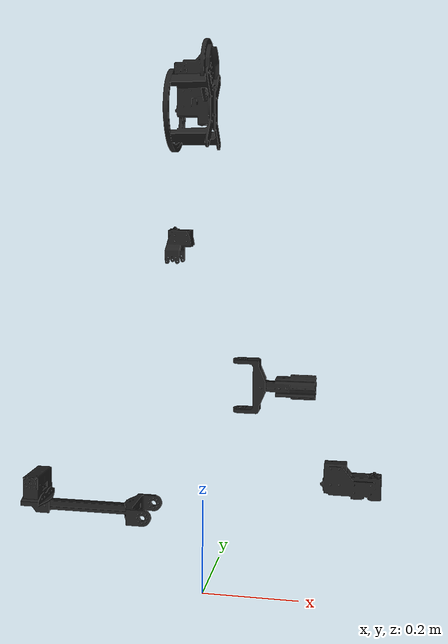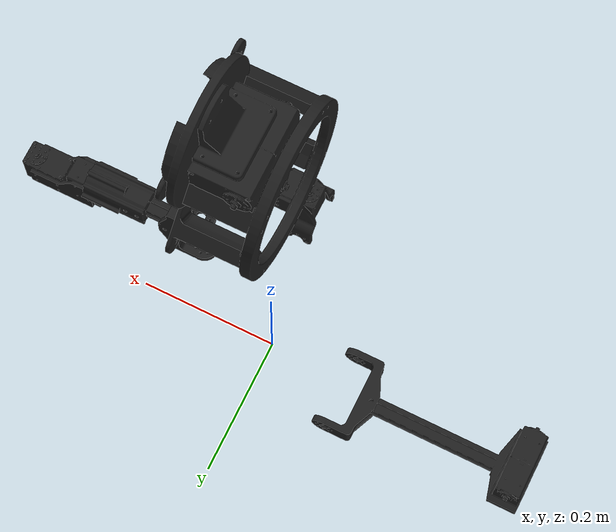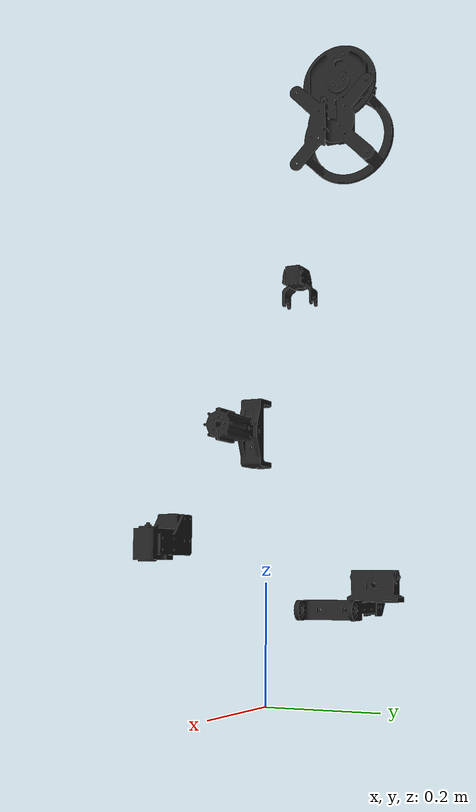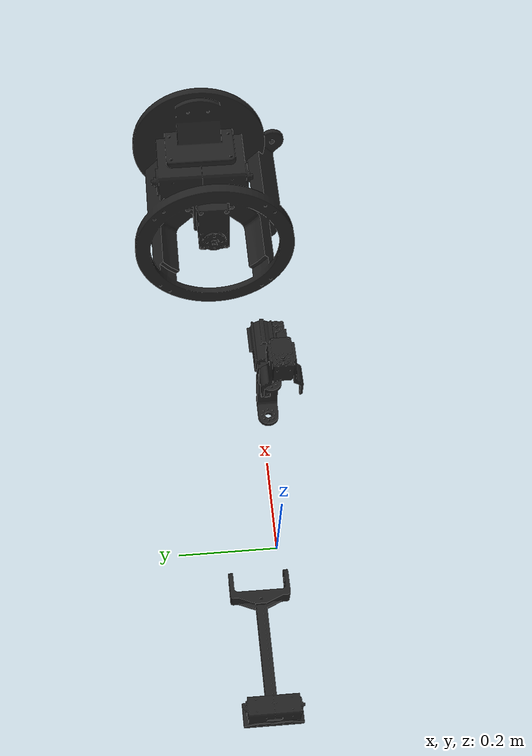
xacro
<?xml version="1.0"?>
<robot name="miv_arm" xmlns:xacro="http://ros.org/wiki/xacro">

  <xacro:property name="robot_model"
    value="miv_arm"
    scope="global"/>
  <xacro:property name="dof"
    value="6"
    scope="global"/>

  <xacro:property name="l1"
    value="0.07775"
    scope="global"/>

  <xacro:property name="l2"
    value="0.05675"
    scope="global"/>

  <xacro:property name="l3"
    value="0.250"
    scope="global"/>

  <xacro:property name="l4"
    value="0.0575"
    scope="global"/>

  <xacro:property name="l5"
    value="0.150"
    scope="global"/>

  <xacro:property name="l6"
    value="0.100"
    scope="global"/>

  <xacro:property name="l7"
    value="0.065"
    scope="global"/>

  <xacro:property name="l8"
    value="0.081"
    scope="global"/>

  <xacro:arg name="robot_name"                      default="${robot_model}"/>
  <xacro:arg name="base_link_frame"                 default="base_link"/>
  <xacro:arg name="use_gripper"                     default="false"/>
  <xacro:arg name="show_ar_tag"                     default="false"/>
  <xacro:arg name="show_gripper_bar"                default="false"/>
  <xacro:arg name="show_gripper_fingers"            default="false"/>
  <xacro:arg name="use_world_frame"                 default="false"/>
  <xacro:arg name="external_urdf_loc"               default=""/>
  <xacro:arg name="hardware_type"                   default="actual"/>

  <xacro:property name="mesh_directory"             value="package://interbotix_xsarm_descriptions/meshes/${robot_model}_meshes"/>
  <xacro:property name="urdf_loc"                   value="$(arg external_urdf_loc)"/>
  <xacro:property name="hardware_type"              value="$(arg hardware_type)"/>
  <xacro:property name="pi_offset"                  value="0.00001"/>

  <xacro:property name="waist_limit_effort"         value="10"/>
  <xacro:property name="waist_limit_lower"          value="${-pi + pi_offset}"/>
  <xacro:property name="waist_limit_upper"          value="${pi - pi_offset}"/>
  <xacro:property name="waist_limit_vel"            value="${pi}"/>

  <xacro:property name="shoulder_limit_effort"      value="20"/>
  <xacro:property name="shoulder_limit_lower"       value="${radians(-72)}"/>
  <xacro:property name="shoulder_limit_upper"       value="${radians(106)}"/>
  <xacro:property name="shoulder_limit_vel"         value="${pi}"/>

  <xacro:property name="elbow_limit_effort"         value="15"/>
  <xacro:property name="elbow_limit_lower"          value="${radians(-90)}"/>
  <xacro:property name="elbow_limit_upper"          value="${radians(106)}"/>
  <xacro:property name="elbow_limit_vel"            value="${pi}"/>

  <xacro:property name="forearm_roll_limit_effort"   value="2"/>
  <xacro:property name="forearm_roll_limit_lower"    value="${-pi + pi_offset}"/>
  <xacro:property name="forearm_roll_limit_upper"    value="${pi - pi_offset}"/>
  <xacro:property name="forearm_roll_limit_vel"      value="${pi}"/>

  <xacro:property name="wrist_angle_limit_effort"   value="5"/>
  <xacro:property name="wrist_angle_limit_lower"    value="${radians(-90)}"/>
  <xacro:property name="wrist_angle_limit_upper"    value="${radians(90)}"/>
  <xacro:property name="wrist_angle_limit_vel"      value="${pi}"/>

  <xacro:property name="wrist_rotate_limit_effort"  value="1"/>
  <xacro:property name="wrist_rotate_limit_lower"   value="${-pi + pi_offset}"/>
  <xacro:property name="wrist_rotate_limit_upper"   value="${pi - pi_offset}"/>
  <xacro:property name="wrist_rotate_limit_vel"     value="${pi}"/>

  <xacro:property name="gripper_limit_vel"          value="${pi}"/>

  <xacro:property name="finger_limit_effort"        value="5"/>
  <xacro:property name="finger_limit_lower"         value="0.021"/>
  <xacro:property name="finger_limit_upper"         value="0.057"/>
  <xacro:property name="finger_limit_vel"           value="1"/>

  <material name="interbotix_black">
    <texture filename="package://interbotix_xsarm_descriptions/meshes/interbotix_black.png"/>
  </material>

  <xacro:if value="$(arg use_world_frame)">
    <link name="world"/>
    <joint name="fixed" type="fixed">
      <parent
        link="world"/>
      <child
        link="$(arg robot_name)/$(arg base_link_frame)"/>
    </joint>
  </xacro:if> <!-- use_world_frame -->

  <link name="$(arg robot_name)/$(arg base_link_frame)">
    <visual>
      <origin
        rpy="0 0 ${pi/2}"
        xyz="0 0 0"/>
      <geometry>
        <mesh
          filename="${mesh_directory}/base.stl"
          scale="0.001 0.001 0.001"/>
      </geometry>
      <material name="interbotix_black"/>
    </visual>
    <collision>
      <origin
        rpy="0 0 ${pi/2}"
        xyz="0 0 0"/>
      <geometry>
        <mesh
          filename="${mesh_directory}/base.stl"
          scale="0.001 0.001 0.001"/>
      </geometry>
    </collision>
    <inertial>
      <origin
        rpy="0 0 ${pi/2}"
        xyz="-0.0534774000 -0.0005625750 0.0205961000"/>
      <mass value="0.969034"/>
      <inertia
        ixx="0.0060240000"
        iyy="0.0017000000"
        izz="0.0071620000"
        ixy="0.0000471300"
        ixz="0.0000038510"
        iyz="-0.0000841500"/>
    </inertial>
  </link>

  <joint name="waist" type="revolute">
    <axis xyz="0 0 1"/>
    <limit
      effort="${waist_limit_effort}"
      lower="${waist_limit_lower}"
      upper="${waist_limit_upper}"
      velocity="${waist_limit_vel}"/>
    <origin
      rpy="0 0 0"
      xyz="0 0 ${l1}"/>
    <parent
      link="$(arg robot_name)/$(arg base_link_frame)"/>
    <child
      link="$(arg robot_name)/shoulder_link"/>
    <dynamics
      friction="0.1"
      damping="0.1"/>
  </joint>

  <link name="$(arg robot_name)/shoulder_link">
    <visual>
      <origin
        rpy="0 0 ${pi/2}"
        xyz="0 0 0"/>
      <geometry>
        <mesh
          filename="${mesh_directory}/shoulder.stl"
          scale="0.001 0.001 0.001"/>
      </geometry>
      <material name="interbotix_black"/>
    </visual>
    <collision>
      <origin
        rpy="0 0 ${pi/2}"
        xyz="0 0 0"/>
      <geometry>
        <mesh
          filename="${mesh_directory}/shoulder.stl"
          scale="0.001 0.001 0.001"/>
      </geometry>
    </collision>
    <inertial>
      <origin
        rpy="0 0 ${pi/2}"
        xyz="0.0002592330 -0.0000033552 0.0116129000"/>
      <mass value="0.798614"/>
      <inertia
        ixx="0.0009388000"
        iyy="0.0011380000"
        izz="0.0012010000"
        ixy="-0.0000000010"
        ixz="-0.0000000191"
        iyz="0.0000059568"/>
    </inertial>
  </link>

  <joint name="shoulder" type="revolute">
    <axis xyz="0 -1 0"/>
    <limit
      effort="${shoulder_limit_effort}"
      lower="${shoulder_limit_lower}"
      upper="${shoulder_limit_upper}"
      velocity="${shoulder_limit_vel}"/>
    <origin
      rpy="0 0 0"
      xyz="0 0 ${l2}"/>
    <parent
      link="$(arg robot_name)/shoulder_link"/>
    <child
      link="$(arg robot_name)/upper_arm_link"/>
    <dynamics
      friction="0.1"
      damping="0.1"/>
  </joint>

  <link name="$(arg robot_name)/upper_arm_link">
    <visual>
      <origin
        rpy="0 0 ${pi/2}"
        xyz="0 0 0"/>
      <geometry>
        <mesh
          filename="${mesh_directory}/upper_arm.stl"
          scale="0.001 0.001 0.001"/>
      </geometry>
      <material name="interbotix_black"/>
    </visual>
    <collision>
      <origin
        rpy="0 0 ${pi/2}"
        xyz="0 0 0"/>
      <geometry>
        <mesh
          filename="${mesh_directory}/upper_arm.stl"
          scale="0.001 0.001 0.001"/>
      </geometry>
    </collision>
    <inertial>
      <origin
        rpy="0 0 ${pi/2}"
        xyz="0.0206949000 0.0000000004 0.2264590000"/>
      <mass value="0.792592"/>
      <inertia
        ixx="0.0089250000"
        iyy="0.0089370000"
        izz="0.0009357000"
        ixy="0.0000000000"
        ixz="0.0000000000"
        iyz="0.0012010000"/>
    </inertial>
  </link>

  <joint name="elbow" type="revolute">
    <axis xyz="0 -1 0"/>
    <limit
      effort="${elbow_limit_effort}"
      lower="${elbow_limit_lower}"
      upper="${elbow_limit_upper}"
      velocity="${elbow_limit_vel}"/>
    <origin
      rpy="0 0 0"
      xyz="${l4} 0 ${l3}"/>
    <parent
      link="$(arg robot_name)/upper_arm_link"/>
    <child
      link="$(arg robot_name)/upper_forearm_link"/>
    <dynamics
      friction="0.1"
      damping="0.1"/>
  </joint>

  <link name="$(arg robot_name)/upper_forearm_link">
    <visual>
      <origin
        rpy="0 0 0"
        xyz="0 0 0"/>
      <geometry>
        <mesh
          filename="${mesh_directory}/upper_forearm.stl"
          scale="0.001 0.001 0.001"/>
      </geometry>
      <material name="interbotix_black"/>
    </visual>
    <collision>
      <origin
        rpy="0 0 0"
        xyz="0 0 0"/>
      <geometry>
        <mesh
          filename="${mesh_directory}/upper_forearm.stl"
          scale="0.001 0.001 0.001"/>
      </geometry>
    </collision>
    <inertial>
      <origin
        rpy="0 0 0"
        xyz="0.105723 0 0"/>
      <mass value="0.322228"/>
      <inertia
        ixx="0.0001524000"
        iyy="0.0013420000"
        izz="0.0014410000"
        ixy="-0.0000188300"
        ixz="-0.0000084064"
        iyz="0.0000012564"/>
    </inertial>
  </link>

  <joint name="forearm_roll" type="revolute">
    <axis xyz="1 0 0"/>
    <limit
      effort="${forearm_roll_limit_effort}"
      lower="${forearm_roll_limit_lower}"
      upper="${forearm_roll_limit_upper}"
      velocity="${forearm_roll_limit_vel}"/>
    <origin
      rpy="0 0 0"
      xyz="${l5} 0 0"/>
    <parent
      link="$(arg robot_name)/upper_forearm_link"/>
    <child
      link="$(arg robot_name)/lower_forearm_link"/>
    <dynamics
      friction="0.1"
      damping="0.1"/>
  </joint>

  <link name="$(arg robot_name)/lower_forearm_link">
    <visual>
      <origin
        rpy="${pi} 0 0"
        xyz="0 0 0"/>
      <geometry>
        <mesh
          filename="${mesh_directory}/lower_forearm.stl"
          scale="0.001 0.001 0.001"/>
      </geometry>
      <material name="interbotix_black"/>
    </visual>
    <collision>
      <origin
        rpy="${pi} 0 0"
        xyz="0 0 0"/>
      <geometry>
        <mesh
          filename="${mesh_directory}/lower_forearm.stl"
          scale="0.001 0.001 0.001"/>
      </geometry>
    </collision>
    <inertial>
      <origin
        rpy="${pi} 0 0"
        xyz="0.0513477000 0.0068046200 0"/>
      <mass value="0.414823"/>
      <inertia
        ixx="0.0001753000"
        iyy="0.0005269000"
        izz="0.0005911000"
        ixy="-0.0000852800"
        ixz="0"
        iyz="0"/>
    </inertial>
  </link>

  <joint name="wrist_angle" type="revolute">
    <axis xyz="0 -1 0"/>
    <limit
      effort="${wrist_angle_limit_effort}"
      lower="${wrist_angle_limit_lower}"
      upper="${wrist_angle_limit_upper}"
      velocity="${wrist_angle_limit_vel}"/>
    <origin
      rpy="0 0 0"
      xyz="${l6} 0 0"/>
    <parent
      link="$(arg robot_name)/lower_forearm_link"/>
    <child
      link="$(arg robot_name)/wrist_link"/>
    <dynamics
      friction="0.1"
      damping="0.1"/>
  </joint>

  <link name="$(arg robot_name)/wrist_link">
    <visual>
      <origin
        rpy="0 0 ${pi/2}"
        xyz="0 0 0"/>
      <geometry>
        <mesh
          filename="${mesh_directory}/wrist.stl"
          scale="0.001 0.001 0.001"/>
      </geometry>
      <material name="interbotix_black"/>
    </visual>
    <collision>
      <origin
        rpy="0 0 ${pi/2}"
        xyz="0 0 0"/>
      <geometry>
        <mesh
          filename="${mesh_directory}/wrist.stl"
          scale="0.001 0.001 0.001"/>
      </geometry>
    </collision>
    <inertial>
      <origin
        rpy="0 0 ${pi/2}"
        xyz="0.0467430000 -0.0000076652 0.0105650000"/>
      <mass value="0.115395"/>
      <inertia
        ixx="0.0000463100"
        iyy="0.0000451400"
        izz="0.0000527000"
        ixy="0.0000000195"
        ixz="0.0000000023"
        iyz="0.0000042002"/>
    </inertial>
  </link>

  <!-- Include the gripper if used -->

  <xacro:if value="$(arg use_gripper)">

    <joint name="wrist_rotate" type="revolute">
      <axis xyz="1 0 0"/>
      <limit
        effort="${wrist_rotate_limit_effort}"
        lower="${wrist_rotate_limit_lower}"
        upper="${wrist_rotate_limit_upper}"
        velocity="${wrist_rotate_limit_vel}"/>
      <origin
        rpy="0 0 0"
        xyz="${l7} 0 0"/>
      <parent
        link="$(arg robot_name)/wrist_link"/>
      <child
        link="$(arg robot_name)/gripper_link"/>
      <dynamics
        friction="0.1"
        damping="0.1"/>
    </joint>

    <link name="$(arg robot_name)/gripper_link">
      <visual>
        <origin
          rpy="0 0 ${pi/2}"
          xyz="0 0 0"/>
        <geometry>
          <mesh
            filename="${mesh_directory}/gripper.stl"
            scale="0.001 0.001 0.001"/>
        </geometry>
        <material name="interbotix_black"/>
      </visual>
      <collision>
        <origin
          rpy="0 0 ${pi/2}"
          xyz="0 0 0"/>
        <geometry>
          <mesh
            filename="${mesh_directory}/gripper.stl"
            scale="0.001 0.001 0.001"/>
        </geometry>
      </collision>
      <inertial>
        <origin
          rpy="0 0 ${pi/2}"
          xyz="0.0230010000 0.0000000000 0.0115230000"/>
        <mass value="0.097666"/>
        <inertia
          ixx="0.0000326800"
          iyy="0.0000243600"
          izz="0.0000211900"
          ixy="0.0000000000"
          ixz="0.0000000000"
          iyz="0.0000002785"/>
      </inertial>
    </link>

    <joint name="ee_arm" type="fixed">
      <axis xyz="1 0 0"/>
      <origin
        rpy="0 0 0"
        xyz="${l8} 0 0"/>
      <parent
        link="$(arg robot_name)/gripper_link"/>
      <child
        link="$(arg robot_name)/ee_arm_link"/>
    </joint>

    <link name="$(arg robot_name)/ee_arm_link">
      <inertial>
        <mass value="0.001"/>
        <inertia
          ixx="0.0001"
          iyy="0.0001"
          izz="0.0001"
          ixy="0"
          ixz="0"
          iyz="0"/>
      </inertial>
    </link>

    <joint name="gripper" type="continuous">
      <axis xyz="1 0 0"/>
      <limit
        effort="1"
        velocity="${gripper_limit_vel}"/>
      <origin
        rpy="0 0 0"
        xyz="0.005675 0 0"/>
      <parent
        link="$(arg robot_name)/ee_arm_link"/>
      <child
        link="$(arg robot_name)/gripper_prop_link"/>
      <dynamics
        friction="0.1"
        damping="0.1"/>
    </joint>

    <link name="$(arg robot_name)/gripper_prop_link">
      <visual>
        <origin
          rpy="0 0 ${pi/2}"
          xyz="-0.0685 0 0"/>
        <geometry>
          <mesh
            filename="${mesh_directory}/gripper_prop.stl"
            scale="0.001 0.001 0.001"/>
        </geometry>
        <material name="interbotix_black"/>
      </visual>
      <collision>
        <origin
          rpy="0 0 ${pi/2}"
          xyz="-0.0685 0 0"/>
        <geometry>
          <mesh
            filename="${mesh_directory}/gripper_prop.stl"
            scale="0.001 0.001 0.001"/>
        </geometry>
      </collision>
      <inertial>
        <origin
          rpy="0 0 ${pi/2}"
          xyz="0.0023780000 0.0000000285 0.0000000000"/>
        <mass value="0.008009"/>
        <inertia
          ixx="0.0000020386"
          iyy="0.0000042979"
          izz="0.0000023796"
          ixy="0.0000000000"
          ixz="0.0000006559"
          iyz="0.0000000000"/>
      </inertial>
    </link>

    <!-- If the AR tag is being used, then add the AR tag mount -->

    <xacro:if value="$(arg show_ar_tag)">
      <xacro:include filename="$(find interbotix_xsarm_descriptions)/urdf/ar_tag.urdf.xacro"/>
    </xacro:if> <!-- show_ar_tag -->

    <!-- If the gripper bar is being used, then also add the gripper bar -->

    <xacro:if value="$(arg show_gripper_bar)">

      <joint name="gripper_bar" type="fixed">
        <axis xyz="1 0 0"/>
        <origin
          rpy="0 0 0"
          xyz="0 0 0"/>
        <parent
          link="$(arg robot_name)/ee_arm_link"/>
        <child
          link="$(arg robot_name)/gripper_bar_link"/>
      </joint>

      <link name="$(arg robot_name)/gripper_bar_link">
        <visual>
          <origin
            rpy="0 0 ${pi/2}"
            xyz="-0.063 0 0"/>
          <geometry>
            <mesh
              filename="${mesh_directory}/gripper_bar.stl"
              scale="0.001 0.001 0.001"/>
          </geometry>
          <material name="interbotix_black"/>
        </visual>
        <collision>
          <origin
            rpy="0 0 ${pi/2}"
            xyz="-0.063 0 0"/>
          <geometry>
            <mesh
              filename="${mesh_directory}/gripper_bar.stl"
              scale="0.001 0.001 0.001"/>
          </geometry>
        </collision>
        <inertial>
          <origin
            rpy="0 0 ${pi/2}"
            xyz="0.0067940000 -0.0000004272 -0.0007760000"/>
          <mass value="0.150986"/>
          <inertia
            ixx="0.0000789500"
            iyy="0.0003283000"
            izz="0.0003095000"
            ixy="-0.0000000012"
            ixz="0.0000001341"
            iyz="0.0000017465"/>
        </inertial>
      </link>

      <joint name="ee_bar" type="fixed">
        <axis xyz="1 0 0"/>
        <origin
          rpy="0 0 0"
          xyz="0.025875 0 0"/>
        <parent
          link="$(arg robot_name)/gripper_bar_link"/>
        <child
          link="$(arg robot_name)/fingers_link"/>
      </joint>

      <link name="$(arg robot_name)/fingers_link">
        <inertial>
          <mass value="0.001"/>
          <inertia
            ixx="0.0001"
            iyy="0.0001"
            izz="0.0001"
            ixy="0"
            ixz="0"
            iyz="0"/>
        </inertial>
      </link>

      <!-- If the gripper fingers are being used, add those as well -->

      <xacro:if value="$(arg show_gripper_fingers)">

        <joint name="left_finger" type="prismatic">
          <axis xyz="0 1 0"/>
          <limit
            effort="${finger_limit_effort}"
            lower="${finger_limit_lower}"
            upper="${finger_limit_upper}"
            velocity="${finger_limit_vel}"/>
          <origin
            rpy="0 0 0"
            xyz="0 0 0"/>
          <parent
            link="$(arg robot_name)/fingers_link"/>
          <child
            link="$(arg robot_name)/left_finger_link"/>
          <dynamics
            friction="0.1"
            damping="0.1"/>
        </joint>

        <link name="$(arg robot_name)/left_finger_link">
          <visual>
            <origin
              rpy="${pi/2} ${-pi} ${pi/2}"
              xyz="-0.0404 -0.0575 0"/>
            <geometry>
              <mesh
                filename="${mesh_directory}/gripper_finger.stl"
                scale="0.001 0.001 0.001"/>
            </geometry>
            <material name="interbotix_black"/>
          </visual>
          <collision>
            <origin
              rpy="${pi/2} ${-pi} ${pi/2}"
              xyz="-0.0404 -0.0575 0"/>
            <geometry>
              <mesh
                filename="${mesh_directory}/gripper_finger.stl"
                scale="0.001 0.001 0.001"/>
            </geometry>
          </collision>
          <inertial>
            <origin
              rpy="${pi} ${pi} ${pi/2}"
              xyz="0.0173440000 -0.0060692000 0.0000000000"/>
            <mass value="0.034796"/>
            <inertia
              ixx="0.0000243300"
              iyy="0.0000125500"
              izz="0.0000141700"
              ixy="-0.0000024004"
              ixz="0.0000000000"
              iyz="0.0000000000"/>
          </inertial>
        </link>

        <joint name="right_finger" type="prismatic">
          <axis xyz="0 1 0"/>
          <limit
            effort="${finger_limit_effort}"
            lower="${-finger_limit_upper}"
            upper="${-finger_limit_lower}"
            velocity="${finger_limit_vel}"/>
          <origin
            rpy="0 0 0"
            xyz="0 0 0"/>
          <parent
            link="$(arg robot_name)/fingers_link"/>
          <child
            link="$(arg robot_name)/right_finger_link"/>
          <dynamics
            friction="0.1"
            damping="0.1"/>
          <xacro:if value="${hardware_type != 'gz_classic'}">
            <mimic
              joint="left_finger"
              multiplier="-1"
              offset="0"/>
          </xacro:if>
        </joint>

        <link name="$(arg robot_name)/right_finger_link">
          <visual>
            <origin
              rpy="${-pi/2} ${pi} ${-pi/2}"
              xyz="-0.0404 0.0575 0 "/>
            <geometry>
              <mesh
                filename="${mesh_directory}/gripper_finger.stl"
                scale="0.001 0.001 0.001"/>
            </geometry>
            <material name="interbotix_black"/>
          </visual>
          <collision>
            <origin
              rpy="${-pi/2} ${pi} ${-pi/2}"
              xyz="-0.0404 0.0575 0 "/>
            <geometry>
              <mesh
                filename="${mesh_directory}/gripper_finger.stl"
                scale="0.001 0.001 0.001"/>
            </geometry>
          </collision>
          <inertial>
            <origin
              rpy="0 ${pi} ${pi/2}"
              xyz="0.0173440000 0.0060692000  0.0000000000"/>
            <mass value="0.034796"/>
            <inertia
              ixx="0.0000243300"
              iyy="0.0000125500"
              izz="0.0000141700"
              ixy="0.0000024001"
              ixz="0.0000000000"
              iyz="0.0000000000"/>
          </inertial>
        </link>

        <joint name="ee_gripper" type="fixed">
          <axis xyz="1 0 0"/>
          <origin
            rpy="0 0 0"
            xyz="0.0385 0 0"/>
          <parent
            link="$(arg robot_name)/fingers_link"/>
          <child
            link="$(arg robot_name)/ee_gripper_link"/>
        </joint>

        <link name="$(arg robot_name)/ee_gripper_link">
          <inertial>
            <mass value="0.001"/>
            <inertia
              ixx="0.0001"
              iyy="0.0001"
              izz="0.0001"
              ixy="0"
              ixz="0"
              iyz="0"/>
          </inertial>
        </link>

      </xacro:if> <!-- show_gripper_fingers -->

    </xacro:if> <!-- show_gripper_bar -->

  </xacro:if> <!-- use_gripper -->

  <xacro:include filename="$(find interbotix_xsarm_descriptions)/urdf/control.urdf.xacro"/>
  <xacro:include filename="$(find interbotix_xsarm_descriptions)/urdf/gazebo_configs.urdf.xacro"/>

  <xacro:if value="${hardware_type == 'gz_classic'}">
    <xacro:gazebo_configs/>
  </xacro:if>

  <xacro:if value="${urdf_loc != ''}">
    <xacro:include filename="${urdf_loc}"/>
  </xacro:if>

</robot>
